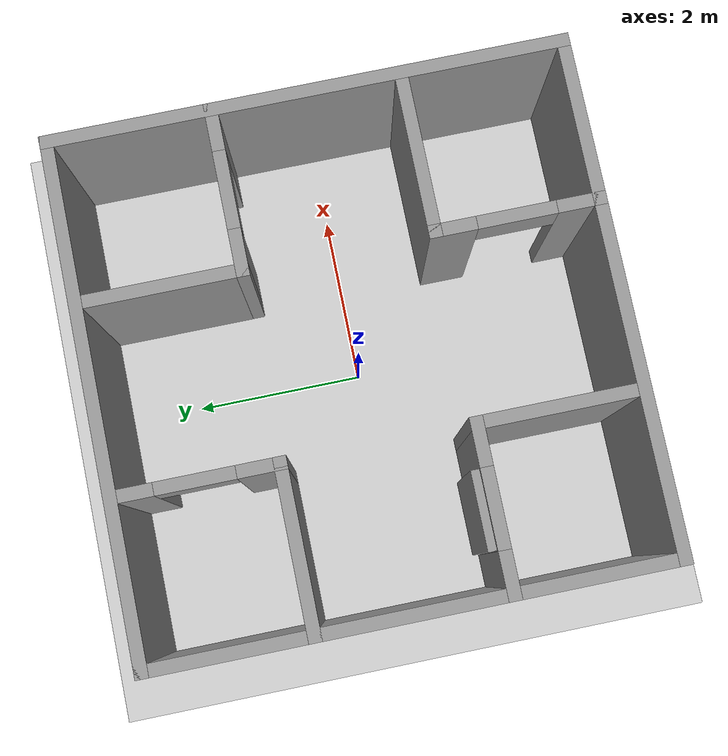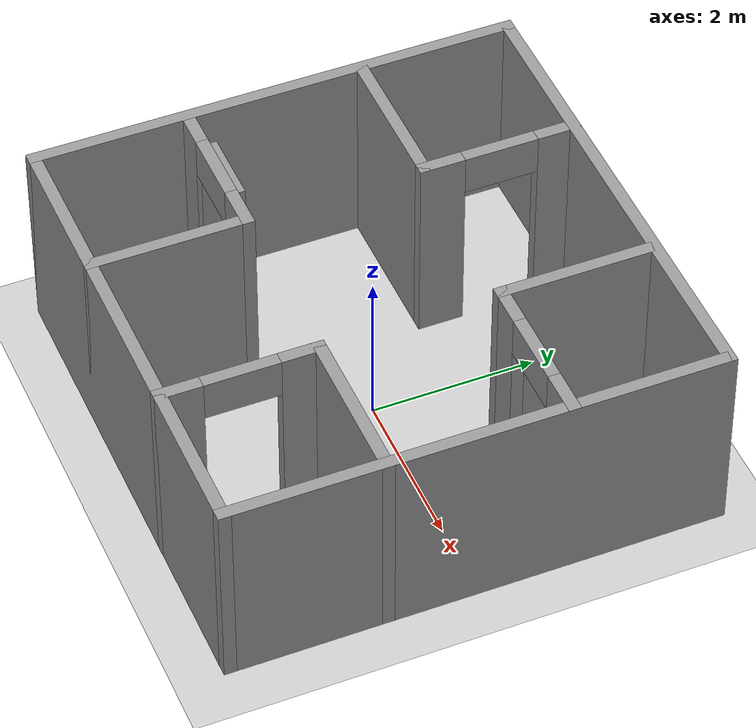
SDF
<sdf version="1.6">
 <world name="default">
  <light name="sun" type="directional">
   <pose>0 0 10 0 -0 0</pose>
   <diffuse>0.8 0.8 0.8 1</diffuse>
   <specular>0.2 0.2 0.2 1</specular>
   <attenuation>
    <range>1000</range>
    <constant>0.9</constant>
    <linear>0.01</linear>
    <quadratic>0.001</quadratic>
   </attenuation>
   <direction>0.5 0.1 -0.9</direction>
  </light>
  <model name="ground_plane">
   <static>1</static>
   <link name="link">
    <collision name="collision">
     <geometry><plane><normal>0 0 1</normal><size>100 100</size></plane></geometry>
     <surface><friction><ode><mu>100</mu><mu2>50</mu2></ode></friction></surface>
    </collision>
    <visual name="visual">
     <cast_shadows>0</cast_shadows>
     <geometry><plane><normal>0 0 1</normal><size>100 100</size></plane></geometry>
     <material>
      <script><uri>file://media/materials/scripts/gazebo.material</uri><name>Gazebo/Grey</name></script>
     </material>
    </visual>
    <velocity_decay><linear>0</linear><angular>0</angular></velocity_decay>
   </link>
  </model>
  <scene><ambient>0.4 0.4 0.4 1</ambient><background>0.7 0.7 0.7 1</background><shadows>0</shadows></scene>
  <physics name="default_physics" default="0" type="ode">
   <max_step_size>0.01</max_step_size>
   <real_time_factor>1</real_time_factor>
   <real_time_update_rate>0</real_time_update_rate>
  </physics>
  <gravity>0 0 -9.8</gravity>
  <magnetic_field>6e-06 2.3e-05 -4.2e-05</magnetic_field>
  <atmosphere type="adiabatic"/>
  <spherical_coordinates>
   <surface_model>EARTH_WGS84</surface_model>
   <latitude_deg>0</latitude_deg>
   <longitude_deg>0</longitude_deg>
   <elevation>0</elevation>
   <heading_deg>0</heading_deg>
  </spherical_coordinates>
  <model name="grey_wall">
   <static>1</static>
   <link name="link">
    <pose>0 0 1.4 0 -0 0</pose>
    <collision name="collision"><geometry><box><size>0.887576 0.2 2.07407</size></box></geometry></collision>
    <visual name="visual">
     <cast_shadows>0</cast_shadows>
     <geometry><box><size>0.887576 0.2 2.07407</size></box></geometry>
     <material>
      <script><uri>file://media/materials/scripts/gazebo.material</uri><name>Gazebo/Grey</name></script>
      <ambient>1 1 1 1</ambient>
     </material>
    </visual>
   </link>
   <pose>-2 -1 0 0 -0 0</pose>
  </model>
  <model name="4room_final">
   <link name="Wall_116">
    <collision name="Wall_116_Collision">
     <geometry><box><size>6 0.15 2.5</size></box></geometry>
     <pose>0 0 1.25 0 -0 0</pose>
    </collision>
    <visual name="Wall_116_Visual">
     <pose>0 0 1.25 0 -0 0</pose>
     <geometry><box><size>6 0.15 2.5</size></box></geometry>
     <material>
      <script><uri>file://media/materials/scripts/gazebo.material</uri><name>Gazebo/Grey</name></script>
      <ambient>1 1 1 1</ambient>
     </material>
     <meta><layer>0</layer></meta>
    </visual>
    <pose>-2.925 0 0 0 -0 1.5708</pose>
   </link>
   <link name="Wall_118">
    <collision name="Wall_118_Collision">
     <geometry><box><size>6 0.15 2.5</size></box></geometry>
     <pose>0 0 1.25 0 -0 0</pose>
    </collision>
    <visual name="Wall_118_Visual">
     <pose>0 0 1.25 0 -0 0</pose>
     <geometry><box><size>6 0.15 2.5</size></box></geometry>
     <material>
      <script><uri>file://media/materials/scripts/gazebo.material</uri><name>Gazebo/Grey</name></script>
      <ambient>1 1 1 1</ambient>
     </material>
     <meta><layer>0</layer></meta>
    </visual>
    <pose>0 2.925 0 0 -0 0</pose>
   </link>
   <link name="Wall_119">
    <collision name="Wall_119_Collision">
     <geometry><box><size>6 0.15 2.5</size></box></geometry>
     <pose>0 0 1.25 0 -0 0</pose>
    </collision>
    <visual name="Wall_119_Visual">
     <pose>0 0 1.25 0 -0 0</pose>
     <geometry><box><size>6 0.15 2.5</size></box></geometry>
     <material>
      <script><uri>file://media/materials/scripts/gazebo.material</uri><name>Gazebo/Grey</name></script>
      <ambient>1 1 1 1</ambient>
     </material>
     <meta><layer>0</layer></meta>
    </visual>
    <pose>2.925 0 0 0 0 -1.5708</pose>
   </link>
   <link name="Wall_121">
    <collision name="Wall_121_Collision">
     <geometry><box><size>6 0.15 2.5</size></box></geometry>
     <pose>0 0 1.25 0 -0 0</pose>
    </collision>
    <visual name="Wall_121_Visual">
     <pose>0 0 1.25 0 -0 0</pose>
     <geometry><box><size>6 0.15 2.5</size></box></geometry>
     <material>
      <script><uri>file://media/materials/scripts/gazebo.material</uri><name>Gazebo/Grey</name></script>
      <ambient>1 1 1 1</ambient>
     </material>
     <meta><layer>0</layer></meta>
    </visual>
    <pose>0 -2.925 0 0 -0 0</pose>
   </link>
   <link name="Wall_124">
    <collision name="Wall_124_Collision">
     <geometry><box><size>2 0.15 2.5</size></box></geometry>
     <pose>0 0 1.25 0 -0 0</pose>
    </collision>
    <visual name="Wall_124_Visual">
     <pose>0 0 1.25 0 -0 0</pose>
     <geometry><box><size>2 0.15 2.5</size></box></geometry>
     <material>
      <script><uri>file://media/materials/scripts/gazebo.material</uri><name>Gazebo/Grey</name></script>
      <ambient>1 1 1 1</ambient>
     </material>
     <meta><layer>0</layer></meta>
    </visual>
    <pose>-1.075 -2 0 0 -0 1.5708</pose>
   </link>
   <link name="Wall_125">
    <pose>-2 -1.075 0 0 -0 3.14159</pose>
    <visual name="Wall_125_Visual_0">
     <pose>-0.722748 0 1.25 0 -0 0</pose>
     <geometry><box><size>0.554503 0.15 2.5</size></box></geometry>
     <material>
      <script><uri>file://media/materials/scripts/gazebo.material</uri><name>Gazebo/Grey</name></script>
      <ambient>1 1 1 1</ambient>
     </material>
     <meta><layer>0</layer></meta>
    </visual>
    <collision name="Wall_125_Collision_0">
     <geometry><box><size>0.554503 0.15 2.5</size></box></geometry>
     <pose>-0.722748 0 1.25 0 -0 0</pose>
    </collision>
    <visual name="Wall_125_Visual_1">
     <pose>0.727252 0 1.25 0 -0 0</pose>
     <geometry><box><size>0.545497 0.15 2.5</size></box></geometry>
     <material>
      <script><uri>file://media/materials/scripts/gazebo.material</uri><name>Gazebo/Grey</name></script>
      <ambient>1 1 1 1</ambient>
     </material>
     <meta><layer>0</layer></meta>
    </visual>
    <collision name="Wall_125_Collision_1">
     <geometry><box><size>0.545497 0.15 2.5</size></box></geometry>
     <pose>0.727252 0 1.25 0 -0 0</pose>
    </collision>
    <visual name="Wall_125_Visual_2">
     <pose>0.004503 0 2.25 0 -0 0</pose>
     <geometry><box><size>0.9 0.15 0.5</size></box></geometry>
     <material>
      <script><uri>file://media/materials/scripts/gazebo.material</uri><name>Gazebo/Grey</name></script>
      <ambient>1 1 1 1</ambient>
     </material>
     <meta><layer>0</layer></meta>
    </visual>
    <collision name="Wall_125_Collision_2">
     <geometry><box><size>0.9 0.15 0.5</size></box></geometry>
     <pose>0.004503 0 2.25 0 -0 0</pose>
    </collision>
   </link>
   <link name="Wall_128">
    <collision name="Wall_128_Collision">
     <geometry><box><size>2 0.15 2.5</size></box></geometry>
     <pose>0 0 1.25 0 -0 0</pose>
    </collision>
    <visual name="Wall_128_Visual">
     <pose>0 0 1.25 0 -0 0</pose>
     <geometry><box><size>2 0.15 2.5</size></box></geometry>
     <material>
      <script><uri>file://media/materials/scripts/gazebo.material</uri><name>Gazebo/Grey</name></script>
      <ambient>1 1 1 1</ambient>
     </material>
     <meta><layer>0</layer></meta>
    </visual>
    <pose>-2 1.075 0 0 -0 0</pose>
   </link>
   <link name="Wall_129">
    <pose>-1.075 2 0 0 -0 1.5708</pose>
    <visual name="Wall_129_Visual_0">
     <pose>-0.722203 0 1.25 0 -0 0</pose>
     <geometry><box><size>0.555595 0.15 2.5</size></box></geometry>
     <material>
      <script><uri>file://media/materials/scripts/gazebo.material</uri><name>Gazebo/Grey</name></script>
      <ambient>1 1 1 1</ambient>
     </material>
     <meta><layer>0</layer></meta>
    </visual>
    <collision name="Wall_129_Collision_0">
     <geometry><box><size>0.555595 0.15 2.5</size></box></geometry>
     <pose>-0.722203 0 1.25 0 -0 0</pose>
    </collision>
    <visual name="Wall_129_Visual_1">
     <pose>0.727797 0 1.25 0 -0 0</pose>
     <geometry><box><size>0.544405 0.15 2.5</size></box></geometry>
     <material>
      <script><uri>file://media/materials/scripts/gazebo.material</uri><name>Gazebo/Grey</name></script>
      <ambient>1 1 1 1</ambient>
     </material>
     <meta><layer>0</layer></meta>
    </visual>
    <collision name="Wall_129_Collision_1">
     <geometry><box><size>0.544405 0.15 2.5</size></box></geometry>
     <pose>0.727797 0 1.25 0 -0 0</pose>
    </collision>
    <visual name="Wall_129_Visual_2">
     <pose>0.005595 0 2.25 0 -0 0</pose>
     <geometry><box><size>0.9 0.15 0.5</size></box></geometry>
     <material>
      <script><uri>file://media/materials/scripts/gazebo.material</uri><name>Gazebo/Grey</name></script>
      <ambient>1 1 1 1</ambient>
     </material>
     <meta><layer>0</layer></meta>
    </visual>
    <collision name="Wall_129_Collision_2">
     <geometry><box><size>0.9 0.15 0.5</size></box></geometry>
     <pose>0.005595 0 2.25 0 -0 0</pose>
    </collision>
   </link>
   <link name="Wall_132">
    <pose>1.075 -2 0 0 -0 1.5708</pose>
    <visual name="Wall_132_Visual_0">
     <pose>-0.722203 0 1.25 0 -0 0</pose>
     <geometry><box><size>0.555595 0.15 2.5</size></box></geometry>
     <material>
      <script><uri>file://media/materials/scripts/gazebo.material</uri><name>Gazebo/Grey</name></script>
      <ambient>1 1 1 1</ambient>
     </material>
     <meta><layer>0</layer></meta>
    </visual>
    <collision name="Wall_132_Collision_0">
     <geometry><box><size>0.555595 0.15 2.5</size></box></geometry>
     <pose>-0.722203 0 1.25 0 -0 0</pose>
    </collision>
    <visual name="Wall_132_Visual_1">
     <pose>0.727797 0 1.25 0 -0 0</pose>
     <geometry><box><size>0.544405 0.15 2.5</size></box></geometry>
     <material>
      <script><uri>file://media/materials/scripts/gazebo.material</uri><name>Gazebo/Grey</name></script>
      <ambient>1 1 1 1</ambient>
     </material>
     <meta><layer>0</layer></meta>
    </visual>
    <collision name="Wall_132_Collision_1">
     <geometry><box><size>0.544405 0.15 2.5</size></box></geometry>
     <pose>0.727797 0 1.25 0 -0 0</pose>
    </collision>
    <visual name="Wall_132_Visual_2">
     <pose>0.005595 0 2.25 0 -0 0</pose>
     <geometry><box><size>0.9 0.15 0.5</size></box></geometry>
     <material>
      <script><uri>file://media/materials/scripts/gazebo.material</uri><name>Gazebo/Grey</name></script>
      <ambient>1 1 1 1</ambient>
     </material>
     <meta><layer>0</layer></meta>
    </visual>
    <collision name="Wall_132_Collision_2">
     <geometry><box><size>0.9 0.15 0.5</size></box></geometry>
     <pose>0.005595 0 2.25 0 -0 0</pose>
    </collision>
   </link>
   <link name="Wall_133">
    <collision name="Wall_133_Collision">
     <geometry><box><size>2 0.15 2.5</size></box></geometry>
     <pose>0 0 1.25 0 -0 0</pose>
    </collision>
    <visual name="Wall_133_Visual">
     <pose>0 0 1.25 0 -0 0</pose>
     <geometry><box><size>2 0.15 2.5</size></box></geometry>
     <material>
      <script><uri>file://media/materials/scripts/gazebo.material</uri><name>Gazebo/Grey</name></script>
      <ambient>1 1 1 1</ambient>
     </material>
     <meta><layer>0</layer></meta>
    </visual>
    <pose>2 -1.075 0 0 -0 0</pose>
   </link>
   <link name="Wall_136">
    <pose>2 1.075 0 0 -0 3.14159</pose>
    <visual name="Wall_136_Visual_0">
     <pose>-0.722748 0 1.25 0 -0 0</pose>
     <geometry><box><size>0.554503 0.15 2.5</size></box></geometry>
     <material>
      <script><uri>file://media/materials/scripts/gazebo.material</uri><name>Gazebo/Grey</name></script>
      <ambient>1 1 1 1</ambient>
     </material>
     <meta><layer>0</layer></meta>
    </visual>
    <collision name="Wall_136_Collision_0">
     <geometry><box><size>0.554503 0.15 2.5</size></box></geometry>
     <pose>-0.722748 0 1.25 0 -0 0</pose>
    </collision>
    <visual name="Wall_136_Visual_1">
     <pose>0.727252 0 1.25 0 -0 0</pose>
     <geometry><box><size>0.545497 0.15 2.5</size></box></geometry>
     <material>
      <script><uri>file://media/materials/scripts/gazebo.material</uri><name>Gazebo/Grey</name></script>
      <ambient>1 1 1 1</ambient>
     </material>
     <meta><layer>0</layer></meta>
    </visual>
    <collision name="Wall_136_Collision_1">
     <geometry><box><size>0.545497 0.15 2.5</size></box></geometry>
     <pose>0.727252 0 1.25 0 -0 0</pose>
    </collision>
    <visual name="Wall_136_Visual_2">
     <pose>0.004503 0 2.25 0 -0 0</pose>
     <geometry><box><size>0.9 0.15 0.5</size></box></geometry>
     <material>
      <script><uri>file://media/materials/scripts/gazebo.material</uri><name>Gazebo/Grey</name></script>
      <ambient>1 1 1 1</ambient>
     </material>
     <meta><layer>0</layer></meta>
    </visual>
    <collision name="Wall_136_Collision_2">
     <geometry><box><size>0.9 0.15 0.5</size></box></geometry>
     <pose>0.004503 0 2.25 0 -0 0</pose>
    </collision>
   </link>
   <link name="Wall_137">
    <collision name="Wall_137_Collision">
     <geometry><box><size>2 0.15 2.5</size></box></geometry>
     <pose>0 0 1.25 0 -0 0</pose>
    </collision>
    <visual name="Wall_137_Visual">
     <pose>0 0 1.25 0 -0 0</pose>
     <geometry><box><size>2 0.15 2.5</size></box></geometry>
     <material>
      <script><uri>file://media/materials/scripts/gazebo.material</uri><name>Gazebo/Grey</name></script>
      <ambient>1 1 1 1</ambient>
     </material>
     <meta><layer>0</layer></meta>
    </visual>
    <pose>1.075 2 0 0 -0 1.5708</pose>
   </link>
   <static>1</static>
  </model>
 </world>
</sdf>
